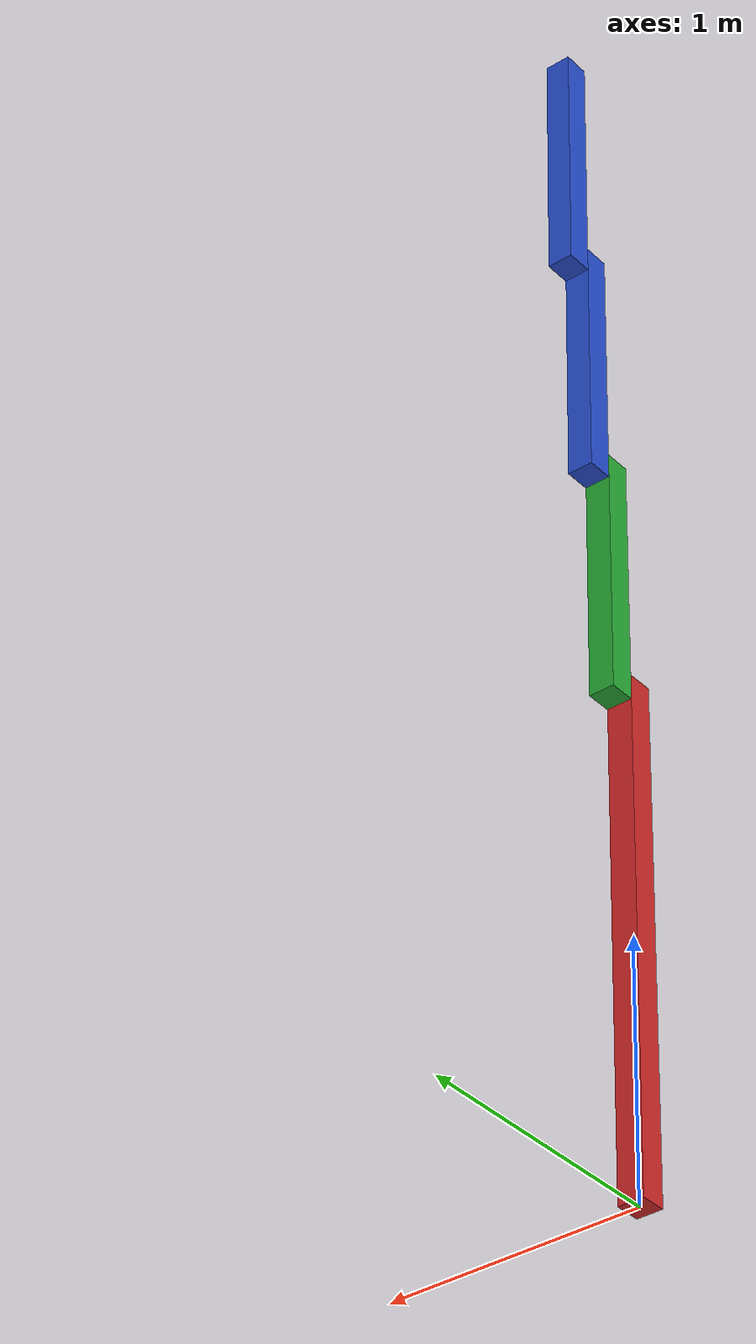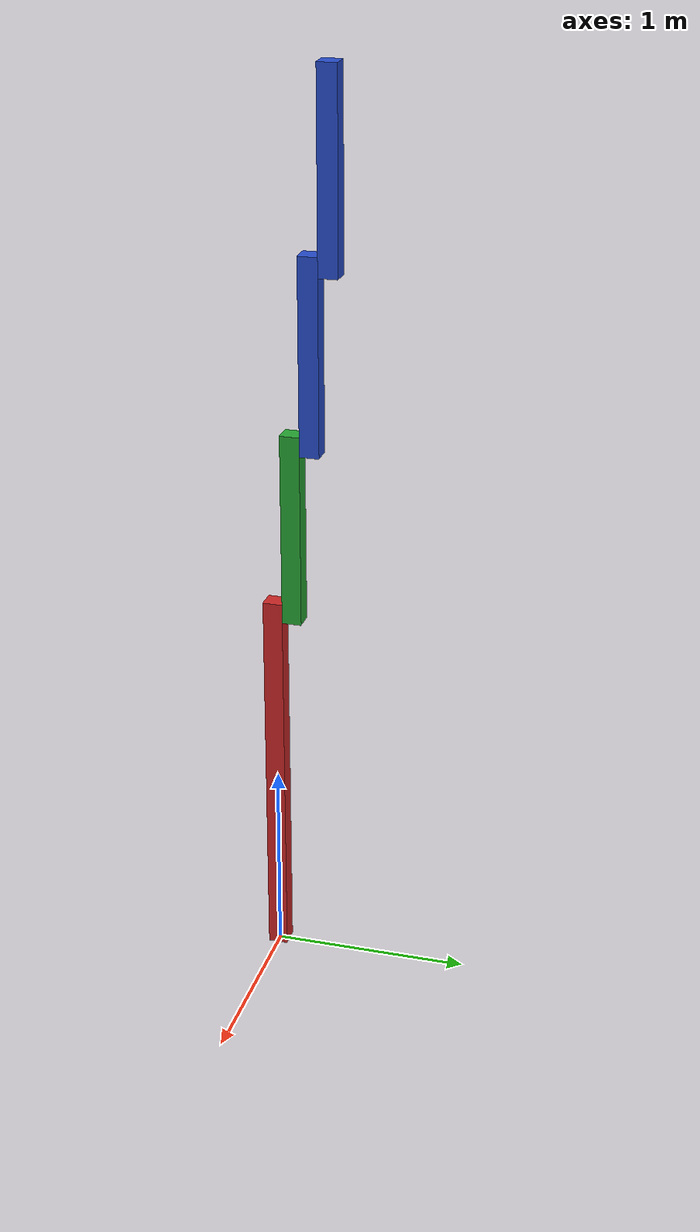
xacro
<?xml version="1.0"?>
<!-- Revolute-Revolute Manipulator -->
<robot name="rrbot" xmlns:xacro="http://www.ros.org/wiki/xacro">

  <!-- Constants for robot dimensions -->
  <xacro:property name="PI" value="3.14"/>
  <xacro:property name="width" value="0.1" />   <!-- Beams are square in length and width -->
  <xacro:property name="height1" value="2" />   <!-- Link 1 -->
  <xacro:property name="height2" value="1" />   <!-- Link 2 -->
  <xacro:property name="height3" value="1" />   <!-- Link 3 -->
  <xacro:property name="height4" value="1" />   <!-- Link 4 -->
  <xacro:property name="axle_offset" value="0.05" /> <!-- Space between joint and end of beam -->
  <xacro:property name="damp" value="0.7" />    <!-- damping coefficient -->

  <!-- Default Inertial -->
  <xacro:macro name="default_inertial" params="z_value i_value mass">
    <inertial>
      <origin xyz="0 0 ${z_value}" rpy="0 0 0"/>
      <mass value="${mass}" />
      <inertia ixx="${i_value}" ixy="0.0" ixz="0.0"
               iyy="${i_value}" iyz="0.0"
               izz="${i_value}" />
      </inertial>
  </xacro:macro>

  <!-- Import Gazebo elements, including Gazebo colors -->
  <xacro:include filename="$(find bras_description)/urdf/rrbot.gazebo" />
  <!-- Import Rviz colors -->
  <xacro:include filename="$(find bras_description)/urdf/materials.xacro" />

  <!-- Used for fixing rrbot frame to Gazebo world frame -->
  <link name="world"/>

  <joint name="fixed" type="fixed">
    <parent link="world"/>
    <child link="base_link"/>
  </joint>

  <!-- Base Link -->
  <link name="base_link">
    <visual>
      <origin xyz="0 0 ${height1/2}" rpy="0 0 0"/>
      <geometry>
	<box size="${width} ${width} ${height1}"/>
      </geometry>
      <material name="red"/>
    </visual>

    <collision>
      <origin xyz="0 0 ${height1/2}" rpy="0 0 0"/>
      <geometry>
	<box size="${width} ${width} ${height1}"/>
      </geometry>
    </collision>

    <xacro:default_inertial z_value="${height1/2}" i_value="1.0" mass="1"/>
  </link>

  <!-- Joint between Base Link and Middle Link -->
  <joint name="joint_base_mid" type="revolute">
    <parent link="base_link"/>
    <child link="mid_link"/>
    <origin xyz="0 ${width} ${height1 - axle_offset}" rpy="0 0 0"/>
    <axis xyz="0 1 0"/>
    <dynamics damping="${damp}"/>
    <limit effort="100.0" velocity="0.5" lower="-3.14" upper="3.14" />
  </joint>

  <!-- Middle Link -->
  <link name="mid_link">
    <visual>
      <origin xyz="0 0 ${height2/2 - axle_offset}" rpy="0 0 0"/>
      <geometry>
	<box size="${width} ${width} ${height2}"/>
      </geometry>
      <material name="green"/>
    </visual>

    <collision>
      <origin xyz="0 0 ${height2/2 - axle_offset}" rpy="0 0 0"/>
      <geometry>
	<box size="${width} ${width} ${height2}"/>
      </geometry>
    </collision>

    <xacro:default_inertial z_value="${height2/2 - axle_offset}" i_value="1.0" mass="1"/>
  </link>

  <!-- Joint between Middle Link and Top mid Link -->
  <joint name="joint_mid_top" type="revolute">
    <parent link="mid_link"/>
    <child link="top_mid_link"/>
    <origin xyz="0 ${width} ${height2 - axle_offset*2}" rpy="0 0 0"/>
    <axis xyz="0 1 0"/>
    <dynamics damping="${damp}"/>
    <limit effort="100.0" velocity="0.5" lower="-3.14" upper="3.14" />
  </joint>

  <!-- Top mid Link -->
  <link name="top_mid_link">
    <visual>
      <origin xyz="0 0 ${height3/2 - axle_offset}" rpy="0 0 0"/>
      <geometry>
	<box size="${width} ${width} ${height3}"/>
      </geometry>
      <material name="blue"/>
    </visual>

    <collision>
      <origin xyz="0 0 ${height3/2 - axle_offset}" rpy="0 0 0"/>
      <geometry>
	<box size="${width} ${width} ${height3}"/>
      </geometry>
    </collision>

    <xacro:default_inertial z_value="${height3/2 - axle_offset}" i_value="1.0" mass="1"/>
  </link>

  <!-- Joint between Top mid Link and Top Link -->
  <joint name="joint_top" type="revolute">
    <parent link="top_mid_link"/>
    <child link="top_link"/>
    <origin xyz="0 ${width} ${height2 - axle_offset*2}" rpy="0 0 0"/>
    <axis xyz="0 1 0"/>
    <dynamics damping="${damp}"/>
    <limit effort="100.0" velocity="0.5" lower="-3.14" upper="3.14" />
  </joint>

  <!-- Top Link -->
  <link name="top_link">
    <visual>
      <origin xyz="0 0 ${height4/2 - axle_offset}" rpy="0 0 0"/>
      <geometry>
	<box size="${width} ${width} ${height4}"/>
      </geometry>
      <material name="blue"/>
    </visual>

    <collision>
      <origin xyz="0 0 ${height4/2 - axle_offset}" rpy="0 0 0"/>
      <geometry>
	<box size="${width} ${width} ${height4}"/>
      </geometry>
    </collision>

    <xacro:default_inertial z_value="${height4/2 - axle_offset}" i_value="1.0" mass="1"/>
  </link>

  <transmission name="transmission1">
    <type>transmission_interface/SimpleTransmission</type>
    <joint name="joint_base_mid">
      <hardwareInterface>hardware_interface/EffortJointInterface</hardwareInterface>
    </joint>
    <actuator name="motor1">
      <mechanicalReduction>1</mechanicalReduction>
    </actuator>
  </transmission>

  <transmission name="transmission2">
    <type>transmission_interface/SimpleTransmission</type>
    <joint name="joint_mid_top">
      <hardwareInterface>hardware_interface/EffortJointInterface</hardwareInterface>
    </joint>
    <actuator name="motor2">
      <mechanicalReduction>1</mechanicalReduction>
    </actuator>
  </transmission>

  <transmission name="transmission3">
    <type>transmission_interface/SimpleTransmission</type>
    <joint name="joint_top">
      <hardwareInterface>hardware_interface/EffortJointInterface</hardwareInterface>
    </joint>
    <actuator name="motor3">
      <mechanicalReduction>1</mechanicalReduction>
    </actuator>
  </transmission>

</robot>
